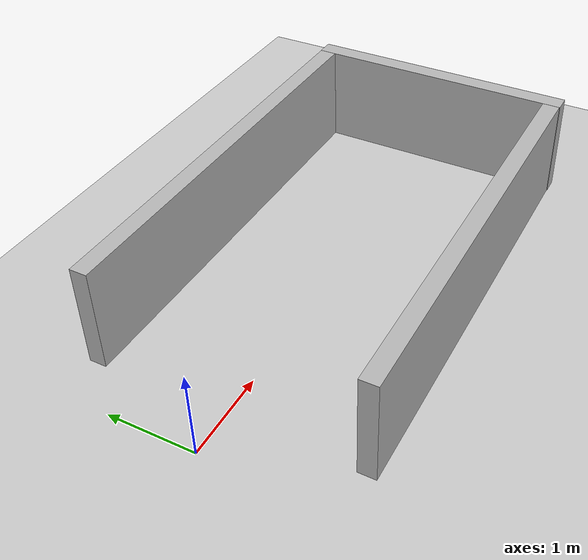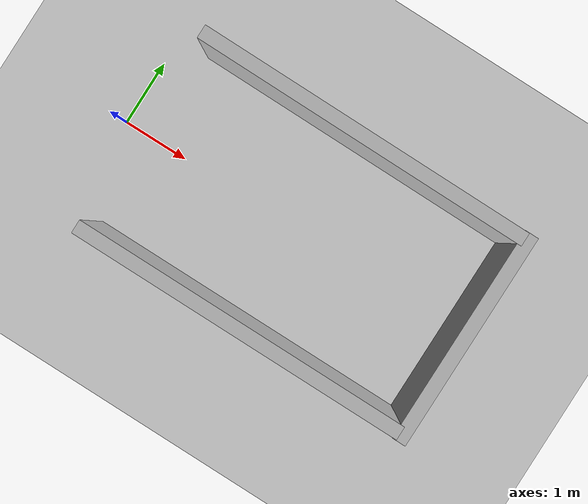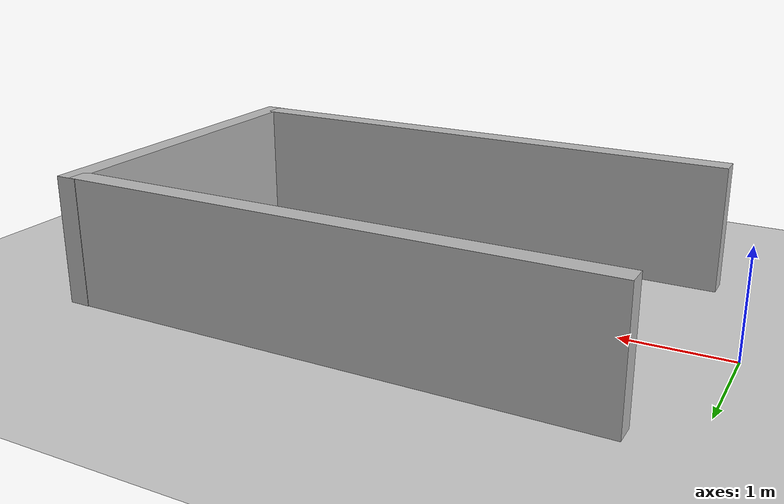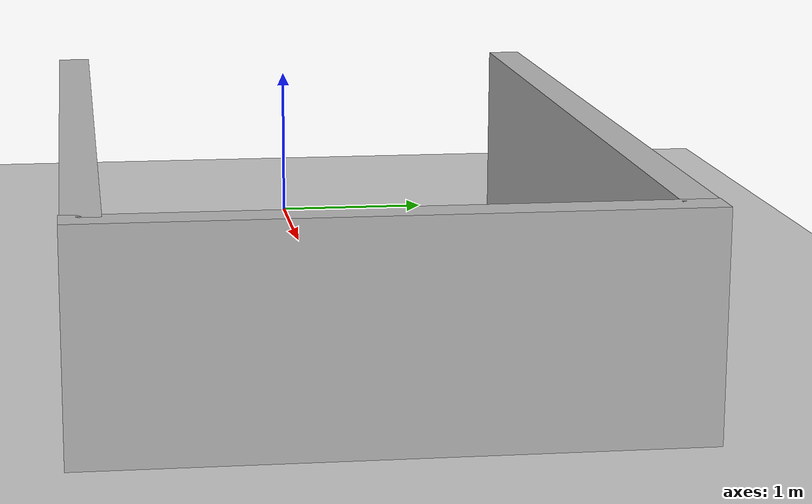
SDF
<?xml version="1.0"?>
<sdf version="1.6">
  <world name="v2-04g-p2-q1-support-maneuver-support-s5346">
    <gravity>0 0 -9.81</gravity>
    <physics name="v2_deterministic" type="ode">
      <max_step_size>0.002</max_step_size>
      <real_time_update_rate>500</real_time_update_rate>
    </physics>
    <include>
      <uri>model://sun</uri>
    </include>
    <include>
      <uri>model://ground_plane</uri>
    </include>
    <model name="bay-left">
      <static>true</static>
      <pose>2.992144198 1.505091068 0.600000000 0 0 -0.003108619</pose>
      <link name="link">
        <collision name="collision">
          <geometry>
            <box>
              <size>5.000000 0.200000 1.200000</size>
            </box>
          </geometry>
        </collision>
        <visual name="visual">
          <geometry>
            <box>
              <size>5.000000 0.200000 1.200000</size>
            </box>
          </geometry>
        </visual>
      </link>
    </model>
    <model name="bay-right">
      <static>true</static>
      <pose>2.981023125 -1.493924847 0.600000000 0 0 0.000973442</pose>
      <link name="link">
        <collision name="collision">
          <geometry>
            <box>
              <size>5.000000 0.200000 1.200000</size>
            </box>
          </geometry>
        </collision>
        <visual name="visual">
          <geometry>
            <box>
              <size>5.000000 0.200000 1.200000</size>
            </box>
          </geometry>
        </visual>
      </link>
    </model>
    <model name="bay-back">
      <static>true</static>
      <pose>5.524516657 0.001766688 0.600000000 0 0 -0.002213272</pose>
      <link name="link">
        <collision name="collision">
          <geometry>
            <box>
              <size>0.200000 3.200000 1.200000</size>
            </box>
          </geometry>
        </collision>
        <visual name="visual">
          <geometry>
            <box>
              <size>0.200000 3.200000 1.200000</size>
            </box>
          </geometry>
        </visual>
      </link>
    </model>
  </world>
</sdf>
